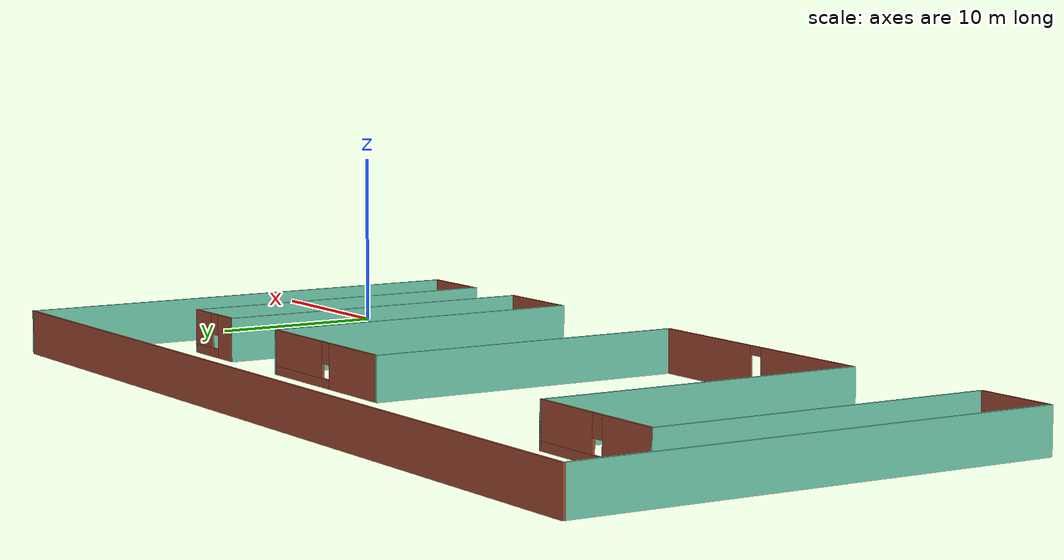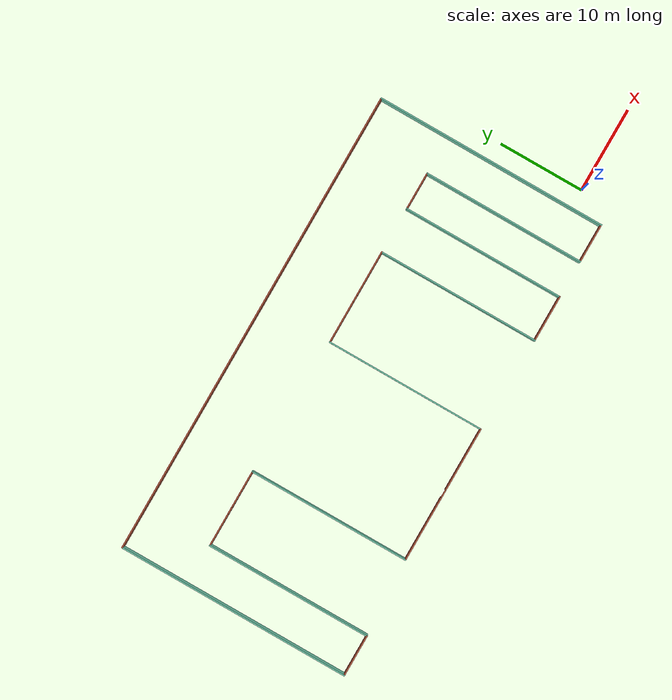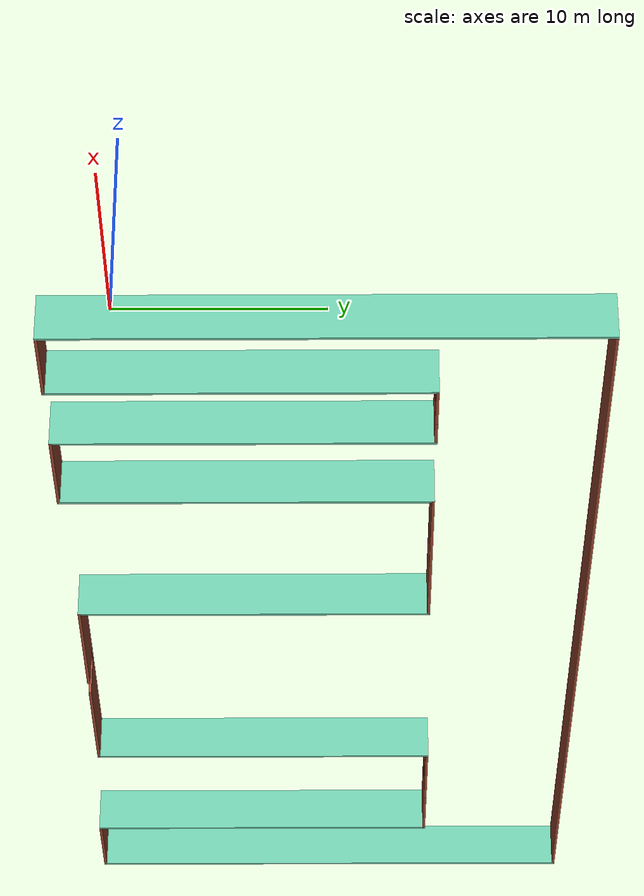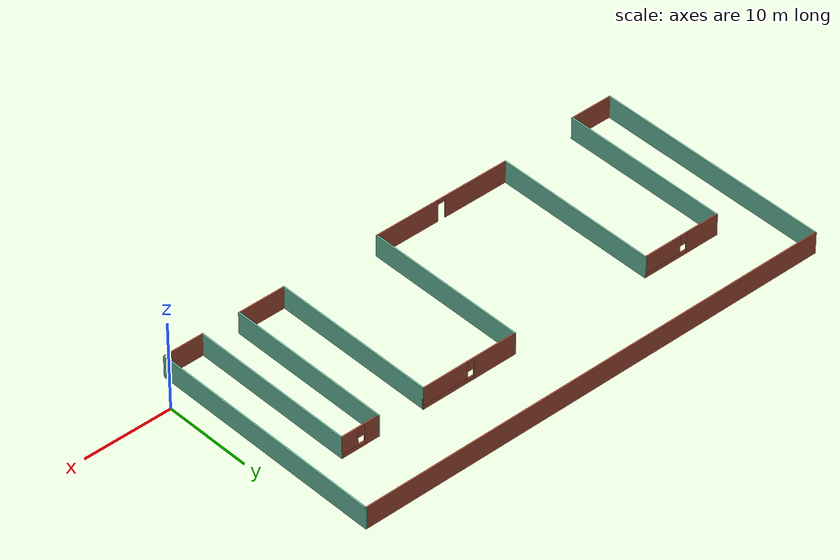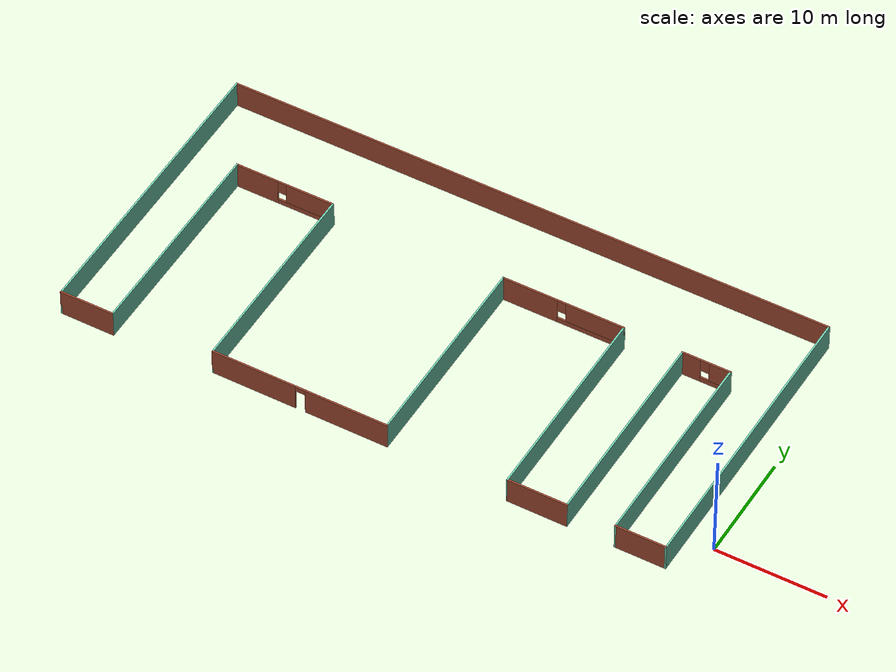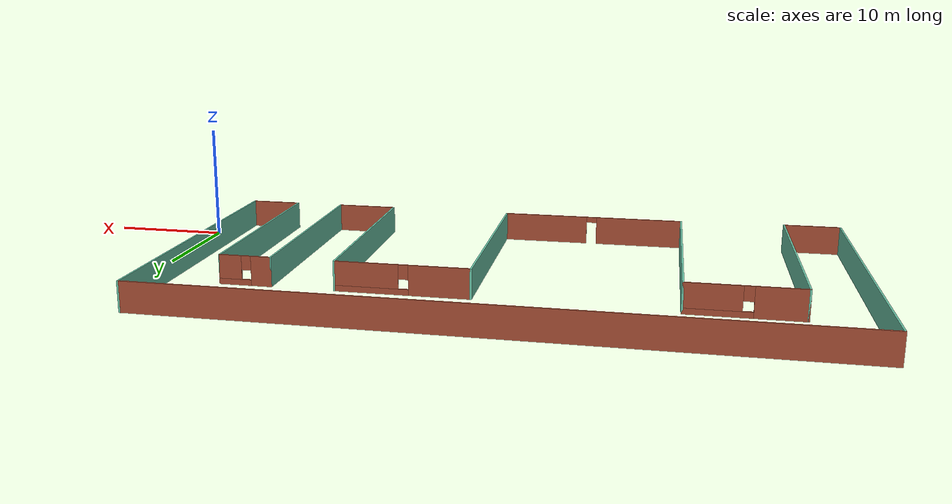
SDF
<?xml version='1.0'?>
<sdf version='1.6'>
  <model name='Building'>
    <pose frame=''>-30.0441 9.79269 0 0 -0 0</pose>
    <link name='Wall_12'>
      <collision name='Wall_12_Collision'>
        <geometry>
          <box>
            <size>4.64987 0.15 2.5</size>
          </box>
        </geometry>
        <pose frame=''>0 0 1.25 0 -0 0</pose>
      </collision>
      <visual name='Wall_12_Visual'>
        <pose frame=''>0 0 1.25 0 -0 0</pose>
        <geometry>
          <box>
            <size>4.64987 0.15 2.5</size>
          </box>
        </geometry>
        <material>
          <script>
            <uri>file://media/materials/scripts/gazebo.material</uri>
            <name>Gazebo/Bricks</name>
          </script>
          <ambient>0.435294 0.796078 0.67451 1</ambient>
        </material>
        <meta>
          <layer>0</layer>
        </meta>
      </visual>
      <pose frame=''>25.4251 -13.4247 0 0 -0 0</pose>
    </link>
    <link name='Wall_26'>
      <collision name='Wall_26_Collision'>
        <geometry>
          <box>
            <size>27.25 0.15 2.5</size>
          </box>
        </geometry>
        <pose frame=''>0 0 1.25 0 -0 0</pose>
      </collision>
      <visual name='Wall_26_Visual'>
        <pose frame=''>0 0 1.25 0 -0 0</pose>
        <geometry>
          <box>
            <size>27.25 0.15 2.5</size>
          </box>
        </geometry>
        <material>
          <script>
            <uri>file://media/materials/scripts/gazebo.material</uri>
            <name>Gazebo/Grey</name>
          </script>
          <ambient>0.435294 0.796078 0.67451 1</ambient>
        </material>
        <meta>
          <layer>0</layer>
        </meta>
      </visual>
      <pose frame=''>27.675 0.125106 0 0 -0 1.5708</pose>
    </link>
    <link name='Wall_27'>
      <collision name='Wall_27_Collision'>
        <geometry>
          <box>
            <size>55.5 0.15 2.5</size>
          </box>
        </geometry>
        <pose frame=''>0 0 1.25 0 -0 0</pose>
      </collision>
      <visual name='Wall_27_Visual'>
        <pose frame=''>0 0 1.25 0 -0 0</pose>
        <geometry>
          <box>
            <size>55.5 0.15 2.5</size>
          </box>
        </geometry>
        <material>
          <script>
            <uri>file://media/materials/scripts/gazebo.material</uri>
            <name>Gazebo/Bricks</name>
          </script>
          <ambient>0.435294 0.796078 0.67451 1</ambient>
        </material>
        <meta>
          <layer>0</layer>
        </meta>
      </visual>
      <pose frame=''>-6.7e-05 13.6749 0 0 -0 3.14159</pose>
    </link>
    <link name='Wall_28'>
      <collision name='Wall_28_Collision'>
        <geometry>
          <box>
            <size>27.5 0.15 2.5</size>
          </box>
        </geometry>
        <pose frame=''>0 0 1.25 0 -0 0</pose>
      </collision>
      <visual name='Wall_28_Visual'>
        <pose frame=''>0 0 1.25 0 -0 0</pose>
        <geometry>
          <box>
            <size>27.5 0.15 2.5</size>
          </box>
        </geometry>
        <material>
          <script>
            <uri>file://media/materials/scripts/gazebo.material</uri>
            <name>Gazebo/Grey</name>
          </script>
          <ambient>0.435294 0.796078 0.67451 1</ambient>
        </material>
        <meta>
          <layer>0</layer>
        </meta>
      </visual>
      <pose frame=''>-27.6751 -0.000103 0 0 0 -1.5708</pose>
    </link>
    <link name='Wall_29'>
      <collision name='Wall_29_Collision'>
        <geometry>
          <box>
            <size>5 0.15 2.5</size>
          </box>
        </geometry>
        <pose frame=''>0 0 1.25 0 -0 0</pose>
      </collision>
      <visual name='Wall_29_Visual'>
        <pose frame=''>0 0 1.25 0 -0 0</pose>
        <geometry>
          <box>
            <size>5 0.15 2.5</size>
          </box>
        </geometry>
        <material>
          <script>
            <uri>file://media/materials/scripts/gazebo.material</uri>
            <name>Gazebo/Bricks</name>
          </script>
          <ambient>0.435294 0.796078 0.67451 1</ambient>
        </material>
        <meta>
          <layer>0</layer>
        </meta>
      </visual>
      <pose frame=''>-25.2501 -13.6751 0 0 -0 0</pose>
    </link>
    <link name='Wall_30'>
      <collision name='Wall_30_Collision'>
        <geometry>
          <box>
            <size>19.5 0.15 2.5</size>
          </box>
        </geometry>
        <pose frame=''>0 0 1.25 0 -0 0</pose>
      </collision>
      <visual name='Wall_30_Visual'>
        <pose frame=''>0 0 1.25 0 -0 0</pose>
        <geometry>
          <box>
            <size>19.5 0.15 2.5</size>
          </box>
        </geometry>
        <material>
          <script>
            <uri>file://media/materials/scripts/gazebo.material</uri>
            <name>Gazebo/Grey</name>
          </script>
          <ambient>0.435294 0.796078 0.67451 1</ambient>
        </material>
        <meta>
          <layer>0</layer>
        </meta>
      </visual>
      <pose frame=''>-22.8251 -4.0001 0 0 -0 1.5708</pose>
    </link>
    <link name='Wall_31'>
      <pose frame=''>-18.2751 5.6749 0 0 -0 0</pose>
      <visual name='Wall_31_Visual_0'>
        <pose frame=''>-2.63237 0 1.25 0 -0 0</pose>
        <geometry>
          <box>
            <size>3.98527 0.15 2.5</size>
          </box>
        </geometry>
        <material>
          <script>
            <uri>file://media/materials/scripts/gazebo.material</uri>
            <name>Gazebo/Bricks</name>
          </script>
          <ambient>0.435294 0.796078 0.67451 1</ambient>
        </material>
        <meta>
          <layer>0</layer>
        </meta>
      </visual>
      <collision name='Wall_31_Collision_0'>
        <geometry>
          <box>
            <size>3.98527 0.15 2.5</size>
          </box>
        </geometry>
        <pose frame=''>-2.63237 0 1.25 0 -0 0</pose>
      </collision>
      <visual name='Wall_31_Visual_1'>
        <pose frame=''>1.99263 0 0.25 0 -0 0</pose>
        <geometry>
          <box>
            <size>5.26473 0.15 0.5</size>
          </box>
        </geometry>
        <material>
          <script>
            <uri>file://media/materials/scripts/gazebo.material</uri>
            <name>Gazebo/Bricks</name>
          </script>
          <ambient>0.435294 0.796078 0.67451 1</ambient>
        </material>
        <meta>
          <layer>0</layer>
        </meta>
      </visual>
      <collision name='Wall_31_Collision_1'>
        <geometry>
          <box>
            <size>5.26473 0.15 0.5</size>
          </box>
        </geometry>
        <pose frame=''>1.99263 0 0.25 0 -0 0</pose>
      </collision>
      <visual name='Wall_31_Visual_2'>
        <pose frame=''>2.39263 0 1.5 0 -0 0</pose>
        <geometry>
          <box>
            <size>4.46473 0.15 2</size>
          </box>
        </geometry>
        <material>
          <script>
            <uri>file://media/materials/scripts/gazebo.material</uri>
            <name>Gazebo/Bricks</name>
          </script>
          <ambient>0.435294 0.796078 0.67451 1</ambient>
        </material>
        <meta>
          <layer>0</layer>
        </meta>
      </visual>
      <collision name='Wall_31_Collision_2'>
        <geometry>
          <box>
            <size>4.46473 0.15 2</size>
          </box>
        </geometry>
        <pose frame=''>2.39263 0 1.5 0 -0 0</pose>
      </collision>
      <visual name='Wall_31_Visual_3'>
        <pose frame=''>-0.239731 0 1.9 0 -0 0</pose>
        <geometry>
          <box>
            <size>0.8 0.15 1.2</size>
          </box>
        </geometry>
        <material>
          <script>
            <uri>file://media/materials/scripts/gazebo.material</uri>
            <name>Gazebo/Bricks</name>
          </script>
          <ambient>0.435294 0.796078 0.67451 1</ambient>
        </material>
        <meta>
          <layer>0</layer>
        </meta>
      </visual>
      <collision name='Wall_31_Collision_3'>
        <geometry>
          <box>
            <size>0.8 0.15 1.2</size>
          </box>
        </geometry>
        <pose frame=''>-0.239731 0 1.9 0 -0 0</pose>
      </collision>
    </link>
    <link name='Wall_32'>
      <collision name='Wall_32_Collision'>
        <geometry>
          <box>
            <size>19 0.15 2.5</size>
          </box>
        </geometry>
        <pose frame=''>0 0 1.25 0 -0 0</pose>
      </collision>
      <visual name='Wall_32_Visual'>
        <pose frame=''>0 0 1.25 0 -0 0</pose>
        <geometry>
          <box>
            <size>19 0.15 2.5</size>
          </box>
        </geometry>
        <material>
          <script>
            <uri>file://media/materials/scripts/gazebo.material</uri>
            <name>Gazebo/Grey</name>
          </script>
          <ambient>0.435294 0.796078 0.67451 1</ambient>
        </material>
        <meta>
          <layer>0</layer>
        </meta>
      </visual>
      <pose frame=''>-13.7251 -3.7501 0 0 0 -1.5708</pose>
    </link>
    <link name='Wall_33'>
      <pose frame=''>-5.67507 -13.1751 0 0 -0 0</pose>
      <visual name='Wall_33_Visual_0'>
        <pose frame=''>-4.24694 0 1.25 0 -0 0</pose>
        <geometry>
          <box>
            <size>7.75612 0.15 2.5</size>
          </box>
        </geometry>
        <material>
          <script>
            <uri>file://media/materials/scripts/gazebo.material</uri>
            <name>Gazebo/Bricks</name>
          </script>
          <ambient>0.435294 0.796078 0.67451 1</ambient>
        </material>
        <meta>
          <layer>0</layer>
        </meta>
      </visual>
      <collision name='Wall_33_Collision_0'>
        <geometry>
          <box>
            <size>7.75612 0.15 2.5</size>
          </box>
        </geometry>
        <pose frame=''>-4.24694 0 1.25 0 -0 0</pose>
      </collision>
      <visual name='Wall_33_Visual_1'>
        <pose frame=''>4.32806 0 1.25 0 -0 0</pose>
        <geometry>
          <box>
            <size>7.59388 0.15 2.5</size>
          </box>
        </geometry>
        <material>
          <script>
            <uri>file://media/materials/scripts/gazebo.material</uri>
            <name>Gazebo/Bricks</name>
          </script>
          <ambient>0.435294 0.796078 0.67451 1</ambient>
        </material>
        <meta>
          <layer>0</layer>
        </meta>
      </visual>
      <collision name='Wall_33_Collision_1'>
        <geometry>
          <box>
            <size>7.59388 0.15 2.5</size>
          </box>
        </geometry>
        <pose frame=''>4.32806 0 1.25 0 -0 0</pose>
      </collision>
      <visual name='Wall_33_Visual_2'>
        <pose frame=''>0.081123 0 2.25 0 -0 0</pose>
        <geometry>
          <box>
            <size>0.9 0.15 0.5</size>
          </box>
        </geometry>
        <material>
          <script>
            <uri>file://media/materials/scripts/gazebo.material</uri>
            <name>Gazebo/Bricks</name>
          </script>
          <ambient>0.435294 0.796078 0.67451 1</ambient>
        </material>
        <meta>
          <layer>0</layer>
        </meta>
      </visual>
      <collision name='Wall_33_Collision_2'>
        <geometry>
          <box>
            <size>0.9 0.15 0.5</size>
          </box>
        </geometry>
        <pose frame=''>0.081123 0 2.25 0 -0 0</pose>
      </collision>
    </link>
    <link name='Wall_34'>
      <collision name='Wall_34_Collision'>
        <geometry>
          <box>
            <size>18.75 0.15 2.5</size>
          </box>
        </geometry>
        <pose frame=''>0 0 1.25 0 -0 0</pose>
      </collision>
      <visual name='Wall_34_Visual'>
        <pose frame=''>0 0 1.25 0 -0 0</pose>
        <geometry>
          <box>
            <size>18.75 0.15 2.5</size>
          </box>
        </geometry>
        <material>
          <script>
            <uri>file://media/materials/scripts/gazebo.material</uri>
            <name>Gazebo/Grey</name>
          </script>
          <ambient>0.435294 0.796078 0.67451 1</ambient>
        </material>
        <meta>
          <layer>0</layer>
        </meta>
      </visual>
      <pose frame=''>2.37493 -3.8751 0 0 -0 1.5708</pose>
    </link>
    <link name='Wall_35'>
      <pose frame=''>7.92493 5.4249 0 0 -0 0</pose>
      <visual name='Wall_35_Visual_0'>
        <pose frame=''>-3.08078 0 1.25 0 -0 0</pose>
        <geometry>
          <box>
            <size>5.08844 0.15 2.5</size>
          </box>
        </geometry>
        <material>
          <script>
            <uri>file://media/materials/scripts/gazebo.material</uri>
            <name>Gazebo/Bricks</name>
          </script>
          <ambient>0.435294 0.796078 0.67451 1</ambient>
        </material>
        <meta>
          <layer>0</layer>
        </meta>
      </visual>
      <collision name='Wall_35_Collision_0'>
        <geometry>
          <box>
            <size>5.08844 0.15 2.5</size>
          </box>
        </geometry>
        <pose frame=''>-3.08078 0 1.25 0 -0 0</pose>
      </collision>
      <visual name='Wall_35_Visual_1'>
        <pose frame=''>2.54422 0 0.25 0 -0 0</pose>
        <geometry>
          <box>
            <size>6.16156 0.15 0.5</size>
          </box>
        </geometry>
        <material>
          <script>
            <uri>file://media/materials/scripts/gazebo.material</uri>
            <name>Gazebo/Bricks</name>
          </script>
          <ambient>0.435294 0.796078 0.67451 1</ambient>
        </material>
        <meta>
          <layer>0</layer>
        </meta>
      </visual>
      <collision name='Wall_35_Collision_1'>
        <geometry>
          <box>
            <size>6.16156 0.15 0.5</size>
          </box>
        </geometry>
        <pose frame=''>2.54422 0 0.25 0 -0 0</pose>
      </collision>
      <visual name='Wall_35_Visual_2'>
        <pose frame=''>2.94422 0 1.5 0 -0 0</pose>
        <geometry>
          <box>
            <size>5.36156 0.15 2</size>
          </box>
        </geometry>
        <material>
          <script>
            <uri>file://media/materials/scripts/gazebo.material</uri>
            <name>Gazebo/Bricks</name>
          </script>
          <ambient>0.435294 0.796078 0.67451 1</ambient>
        </material>
        <meta>
          <layer>0</layer>
        </meta>
      </visual>
      <collision name='Wall_35_Collision_2'>
        <geometry>
          <box>
            <size>5.36156 0.15 2</size>
          </box>
        </geometry>
        <pose frame=''>2.94422 0 1.5 0 -0 0</pose>
      </collision>
      <visual name='Wall_35_Visual_3'>
        <pose frame=''>-0.136564 0 1.9 0 -0 0</pose>
        <geometry>
          <box>
            <size>0.8 0.15 1.2</size>
          </box>
        </geometry>
        <material>
          <script>
            <uri>file://media/materials/scripts/gazebo.material</uri>
            <name>Gazebo/Bricks</name>
          </script>
          <ambient>0.435294 0.796078 0.67451 1</ambient>
        </material>
        <meta>
          <layer>0</layer>
        </meta>
      </visual>
      <collision name='Wall_35_Collision_3'>
        <geometry>
          <box>
            <size>0.8 0.15 1.2</size>
          </box>
        </geometry>
        <pose frame=''>-0.136564 0 1.9 0 -0 0</pose>
      </collision>
    </link>
    <link name='Wall_36'>
      <collision name='Wall_36_Collision'>
        <geometry>
          <box>
            <size>19 0.15 2.5</size>
          </box>
        </geometry>
        <pose frame=''>0 0 1.25 0 -0 0</pose>
      </collision>
      <visual name='Wall_36_Visual'>
        <pose frame=''>0 0 1.25 0 -0 0</pose>
        <geometry>
          <box>
            <size>19 0.15 2.5</size>
          </box>
        </geometry>
        <material>
          <script>
            <uri>file://media/materials/scripts/gazebo.material</uri>
            <name>Gazebo/Grey</name>
          </script>
          <ambient>0.435294 0.796078 0.67451 1</ambient>
        </material>
        <meta>
          <layer>0</layer>
        </meta>
      </visual>
      <pose frame=''>13.4749 -4.0001 0 0 0 -1.5708</pose>
    </link>
    <link name='Wall_37'>
      <collision name='Wall_37_Collision'>
        <geometry>
          <box>
            <size>5.5 0.15 2.5</size>
          </box>
        </geometry>
        <pose frame=''>0 0 1.25 0 -0 0</pose>
      </collision>
      <visual name='Wall_37_Visual'>
        <pose frame=''>0 0 1.25 0 -0 0</pose>
        <geometry>
          <box>
            <size>5.5 0.15 2.5</size>
          </box>
        </geometry>
        <material>
          <script>
            <uri>file://media/materials/scripts/gazebo.material</uri>
            <name>Gazebo/Bricks</name>
          </script>
          <ambient>0.435294 0.796078 0.67451 1</ambient>
        </material>
        <meta>
          <layer>0</layer>
        </meta>
      </visual>
      <pose frame=''>16.1499 -13.4251 0 0 -0 0</pose>
    </link>
    <link name='Wall_38'>
      <collision name='Wall_38_Collision'>
        <geometry>
          <box>
            <size>19 0.15 2.5</size>
          </box>
        </geometry>
        <pose frame=''>0 0 1.25 0 -0 0</pose>
      </collision>
      <visual name='Wall_38_Visual'>
        <pose frame=''>0 0 1.25 0 -0 0</pose>
        <geometry>
          <box>
            <size>19 0.15 2.5</size>
          </box>
        </geometry>
        <material>
          <script>
            <uri>file://media/materials/scripts/gazebo.material</uri>
            <name>Gazebo/Grey</name>
          </script>
          <ambient>0.435294 0.796078 0.67451 1</ambient>
        </material>
        <meta>
          <layer>0</layer>
        </meta>
      </visual>
      <pose frame=''>18.8249 -4.0001 0 0 -0 1.5708</pose>
    </link>
    <link name='Wall_39'>
      <pose frame=''>20.9999 5.4249 0 0 -0 0</pose>
      <visual name='Wall_39_Visual_0'>
        <pose frame=''>-1.37806 0 1.25 0 -0 0</pose>
        <geometry>
          <box>
            <size>1.74387 0.15 2.5</size>
          </box>
        </geometry>
        <material>
          <script>
            <uri>file://media/materials/scripts/gazebo.material</uri>
            <name>Gazebo/Bricks</name>
          </script>
          <ambient>0.435294 0.796078 0.67451 1</ambient>
        </material>
        <meta>
          <layer>0</layer>
        </meta>
      </visual>
      <collision name='Wall_39_Collision_0'>
        <geometry>
          <box>
            <size>1.74387 0.15 2.5</size>
          </box>
        </geometry>
        <pose frame=''>-1.37806 0 1.25 0 -0 0</pose>
      </collision>
      <visual name='Wall_39_Visual_1'>
        <pose frame=''>0.871936 0 0.25 0 -0 0</pose>
        <geometry>
          <box>
            <size>2.75613 0.15 0.5</size>
          </box>
        </geometry>
        <material>
          <script>
            <uri>file://media/materials/scripts/gazebo.material</uri>
            <name>Gazebo/Bricks</name>
          </script>
          <ambient>0.435294 0.796078 0.67451 1</ambient>
        </material>
        <meta>
          <layer>0</layer>
        </meta>
      </visual>
      <collision name='Wall_39_Collision_1'>
        <geometry>
          <box>
            <size>2.75613 0.15 0.5</size>
          </box>
        </geometry>
        <pose frame=''>0.871936 0 0.25 0 -0 0</pose>
      </collision>
      <visual name='Wall_39_Visual_2'>
        <pose frame=''>1.27194 0 1.5 0 -0 0</pose>
        <geometry>
          <box>
            <size>1.95613 0.15 2</size>
          </box>
        </geometry>
        <material>
          <script>
            <uri>file://media/materials/scripts/gazebo.material</uri>
            <name>Gazebo/Bricks</name>
          </script>
          <ambient>0.435294 0.796078 0.67451 1</ambient>
        </material>
        <meta>
          <layer>0</layer>
        </meta>
      </visual>
      <collision name='Wall_39_Collision_2'>
        <geometry>
          <box>
            <size>1.95613 0.15 2</size>
          </box>
        </geometry>
        <pose frame=''>1.27194 0 1.5 0 -0 0</pose>
      </collision>
      <visual name='Wall_39_Visual_3'>
        <pose frame=''>-0.106128 0 1.9 0 -0 0</pose>
        <geometry>
          <box>
            <size>0.8 0.15 1.2</size>
          </box>
        </geometry>
        <material>
          <script>
            <uri>file://media/materials/scripts/gazebo.material</uri>
            <name>Gazebo/Bricks</name>
          </script>
          <ambient>0.435294 0.796078 0.67451 1</ambient>
        </material>
        <meta>
          <layer>0</layer>
        </meta>
      </visual>
      <collision name='Wall_39_Collision_3'>
        <geometry>
          <box>
            <size>0.8 0.15 1.2</size>
          </box>
        </geometry>
        <pose frame=''>-0.106128 0 1.9 0 -0 0</pose>
      </collision>
    </link>
    <link name='Wall_40'>
      <collision name='Wall_40_Collision'>
        <geometry>
          <box>
            <size>19 0.15 2.5</size>
          </box>
        </geometry>
        <pose frame=''>0 0 1.25 0 -0 0</pose>
      </collision>
      <visual name='Wall_40_Visual'>
        <pose frame=''>0 0 1.25 0 -0 0</pose>
        <geometry>
          <box>
            <size>19 0.15 2.5</size>
          </box>
        </geometry>
        <material>
          <script>
            <uri>file://media/materials/scripts/gazebo.material</uri>
            <name>Gazebo/Grey</name>
          </script>
          <ambient>0.435294 0.796078 0.67451 1</ambient>
        </material>
        <meta>
          <layer>0</layer>
        </meta>
      </visual>
      <pose frame=''>23.1749 -4.0001 0 0 0 -1.5708</pose>
    </link>
    <static>1</static>
  </model>
</sdf>
